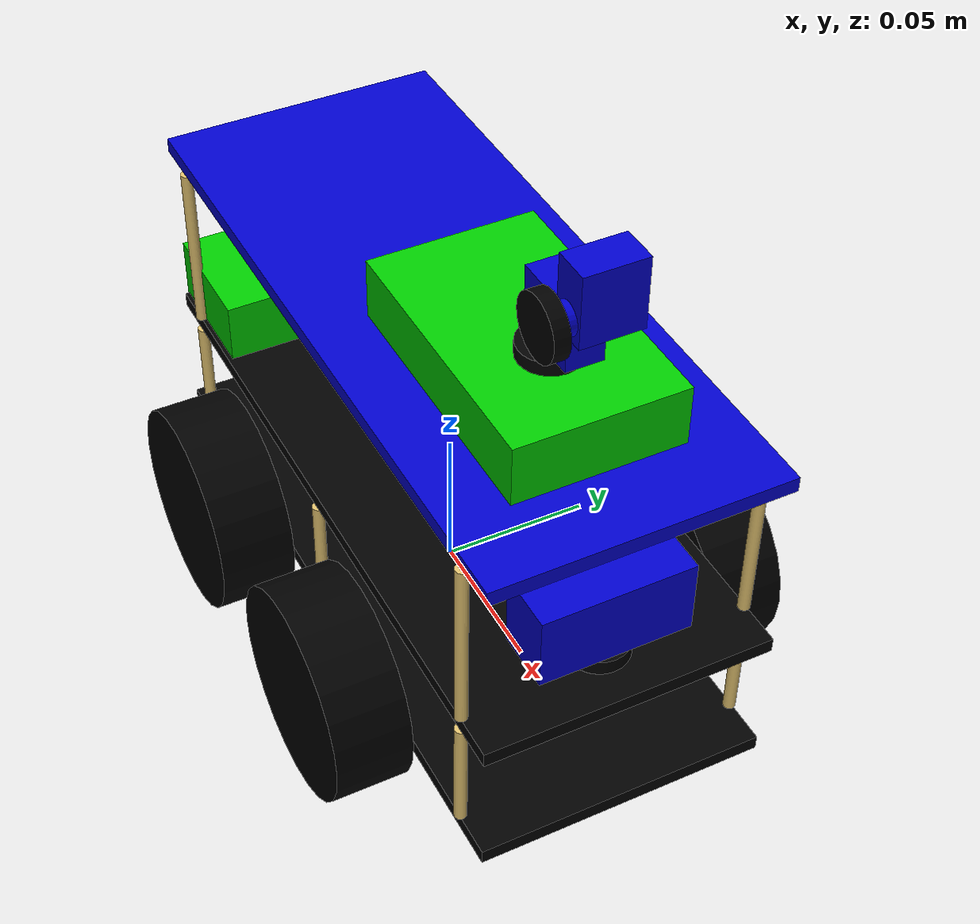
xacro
<?xml version="1.0"?>
<robot xmlns:xacro="http://www.ros.org/wiki/xacro" name="pigoo">

<xacro:property name="wheelRadius" value="0.035" />
<xacro:property name="wheelWidth" value="0.025" />
<xacro:property name="midPlateOffset" value="0.045" />
<xacro:property name="topPlateOffset" value="0.065" />
<xacro:property name="plateHeight" value="0.005" />
<xacro:property name="plateWidth" value="0.095" />
<xacro:property name="plateLength" value="0.23" />

  <!--
  ********************************
  * XACRO MACROS
  ********************************
  -->

<xacro:macro name="box_inertia" params="m h d w">
    <inertia  ixx="${(m*(h*h+d*d))/12}" ixy = "0" ixz = "0"
              iyy="${(m*(w*w+d*d))/12}" iyz = "0"
              izz="${(m*(w*w+h*h))/12}"
     />
</xacro:macro>

<xacro:macro name="cylinder_inertia" params="m r h">
    <inertia  ixx="${(m*(3*r*r+h*h))/12}" ixy = "0" ixz = "0"
              iyy="${(m*(3*r*r+h*h))/12}" iyz = "0"
              izz="${(m*r*r)/2}"
    />
</xacro:macro>

<xacro:macro name="wheel" params="prefix reflect front">
  <link name="${prefix}_wheel">
    <visual>
      <geometry>
        <cylinder length="${wheelWidth}" radius="${wheelRadius}"/>
      </geometry>
      <material name="black">
        <color rgba="0 0 0 1"/>
      </material>
    </visual>
    <collision>
      <geometry>
        <cylinder length="${wheelWidth}" radius="${wheelRadius}"/>
      </geometry>
    </collision>
    <inertial>
      <mass value="0.02"/>
      <xacro:cylinder_inertia m="0.02" r="${wheelRadius}" h="${wheelWidth}"/>
    </inertial>
  </link>

  <joint name="${prefix}_wheel_joint" type="continuous">
    <axis xyz="0 0 1"/>
    <parent link="base_plate"/>
    <child link="${prefix}_wheel"/>
    <origin rpy="-${pi/2} 0 0" xyz="${front*0.045} ${reflect*(plateWidth/2 + wheelWidth/2+0.005)} 0.015"/>
    <limit effort="100" velocity="100"/>
    <dynamics damping="0.0" friction="0.0"/>
  </joint>

  <transmission name="${prefix}_wheel_trans">
    <type>transmission_interface/SimpleTransmission</type>
    <actuator name="${prefix}_wheel_motor">
      <mechanicalReduction>1</mechanicalReduction>
    </actuator>
    <joint name="${prefix}_wheel_joint">
      <hardwareInterface>hardware_interface/VelocityJointInterface</hardwareInterface>
    </joint>
  </transmission>

  <gazebo reference="${prefix}_wheel">
      <mu1 value="200.0"/>
      <mu2 value="100.0"/>
      <kp value="10000000.0" />
      <kd value="1.0" />
      <material>Gazebo/Grey</material>
  </gazebo>

</xacro:macro>

<xacro:macro name="pillar" params="prefix length parent reflect front">
  <link name="${prefix}_pillar">
    <visual>
      <geometry>
        <cylinder length="${length}" radius="0.002"/>
      </geometry>
      <material name="brass">
        <color rgba="0.88 0.7568 0.43 1"/>
      </material>
    </visual>
    <collision>
      <geometry>
        <cylinder length="${length}" radius="0.002"/>
      </geometry>
    </collision>
    <inertial>
      <mass value="0.005"/>
      <xacro:cylinder_inertia m="0.005" r="0.002" h="${length}"/>
    </inertial>
  </link>

  <joint name="${prefix}_pillar" type="fixed">
    <parent link="${parent}"/>
    <child link="${prefix}_pillar"/>
    <origin xyz="${front*0.10} ${reflect*0.047} ${length/2+0.0025}"/>
  </joint>
</xacro:macro>

  <!--
  ********************************
  * link definitions
  ********************************
  -->

  <link name="base_link">
    <origin xyz="0 0 0.015" />
  </link>

  <link name="base_plate">
    <visual>
      <geometry>
        <box size="${plateLength} ${plateWidth} ${plateHeight}" />
      </geometry>
      <material name="black">
        <color rgba="0 0 0 1"/>
      </material>
    </visual>
    <collision>
      <geometry>
        <box size="${plateLength} ${plateWidth} ${plateHeight}" />
      </geometry>
    </collision>
    <inertial>
      <mass value="0.08"/>
      <xacro:box_inertia m="0.08" h="${plateHeight}" d="${plateWidth}" w="${plateLength}" />
    </inertial>
  </link>

  <link name="mid_plate">
    <visual>
      <geometry>
        <box size="${plateLength} ${plateWidth} ${plateHeight}" />
      </geometry>
      <material name="black">
        <color rgba="0 0 0 1"/>
      </material>
    </visual>
    <collision>
      <geometry>
        <box size="${plateLength} ${plateWidth} ${plateHeight}" />
      </geometry>
    </collision>
    <inertial>
      <mass value="0.02"/>
      <xacro:box_inertia m="0.02" h="${plateHeight}" d="${plateWidth}" w="${plateLength}" />
    </inertial>
  </link>

  <link name="top_plate">
    <visual>
      <geometry>
        <box size="${plateLength} ${plateWidth} ${plateHeight}"/>
      </geometry>
      <material name="blue">
        <color rgba="0 0 .8 1"/>
      </material>
    </visual>
    <collision>
      <geometry>
        <box size="${plateLength} ${plateWidth} ${plateHeight}"/>
      </geometry>
    </collision>
    <inertial>
      <mass value="0.02"/>
      <xacro:box_inertia m="0.02" h="${plateHeight}" d="${plateWidth}" w="${plateLength}" />
    </inertial>
  </link>

  <link name="batteryBox">
	  <visual>
      <geometry>
        <box size="0.042 0.092 0.023" />
      </geometry>
      <material name="green">
        <color rgba="0 0.8 0 1"/>
      </material>
    </visual>
    <collision>
      <geometry>
        <box size="0.042 0.092 0.023" />
      </geometry>
    </collision>
    <inertial>
      <mass value="0.07"/>
      <xacro:box_inertia m="0.07" h="0.023" d="0.042" w="0.092" />
    </inertial>
  </link>

  <xacro:wheel prefix="right_front" reflect="-1" front="1" />
  <xacro:wheel prefix="left_front" reflect="1" front="1" />
  <xacro:wheel prefix="right_back" reflect="-1" front="-1" />
  <xacro:wheel prefix="left_back" reflect="1" front="-1" />

  <xacro:pillar prefix="base_right_front" length="${midPlateOffset - plateHeight}" parent="base_plate" reflect="-1" front="1" />
  <xacro:pillar prefix="base_left_front" length="${midPlateOffset -plateHeight}" parent="base_plate" reflect="1" front="1" />
  <xacro:pillar prefix="base_right_mid" length="${midPlateOffset - plateHeight}" parent="base_plate" reflect="-1" front="0" />
  <xacro:pillar prefix="base_left_mid" length="${midPlateOffset - plateHeight}" parent="base_plate" reflect="1" front="0" />
  <xacro:pillar prefix="base_right_back" length="${midPlateOffset - plateHeight}" parent="base_plate" reflect="-1" front="-1" />
  <xacro:pillar prefix="base_left_back" length="${midPlateOffset - plateHeight}" parent="base_plate" reflect="1" front="-1" />

  <xacro:pillar prefix="mid_right_front" length="${topPlateOffset- plateHeight}" parent="mid_plate" reflect="-1" front="1" />
  <xacro:pillar prefix="mid_left_front" length="${topPlateOffset - plateHeight}" parent="mid_plate" reflect="1" front="1" />
  <xacro:pillar prefix="mid_right_back" length="${topPlateOffset - plateHeight}" parent="mid_plate" reflect="-1" front="-1" />
  <xacro:pillar prefix="mid_left_fback" length="${topPlateOffset - plateHeight}" parent="mid_plate" reflect="1" front="-1" />

  <link name="raspberry_pi">
	  <visual>
      <geometry>
        <box size="0.09 0.055 0.02" />
      </geometry>
      <material name="green">
        <color rgba="0 0.8 0 1"/>
      </material>
    </visual>
    <collision>
      <geometry>
        <box size="0.09 0.055 0.02" />
      </geometry>
    </collision>
    <inertial>
      <mass value="0.02"/>
      <xacro:box_inertia m="0.02" h="0.02" d="0.055" w="0.09" />
    </inertial>
  </link>

  <link name="cam_pan_bottom_link">
		<visual>
			<geometry>
				<cylinder length="0.005" radius="0.01"/>
			</geometry>
	    <material name="black"/>
	  </visual>
    <collision>
			<geometry>
				<cylinder length="0.005" radius="0.01"/>
			</geometry>
	  </collision>
    <inertial>
      <mass value="0.005"/>
      <xacro:cylinder_inertia m="0.005" r="0.01" h="0.005"/>
    </inertial>
	</link>

  <link name="cam_pan_top_link">
		<visual>
			<geometry>
				<cylinder length="0.005" radius="0.005"/>
			</geometry>
	    <material name="blue"/>
	  </visual>
    <collision>
			<geometry>
				<cylinder length="0.005" radius="0.005"/>
			</geometry>
	  </collision>
    <inertial>
      <mass value="0.005"/>
      <xacro:cylinder_inertia m="0.005" r="0.005" h="0.005"/>
    </inertial>
	</link>

  <link name="cam_pan_servo">
    <visual>
      <geometry>
        <box size="0.023 0.012 0.02" />
      </geometry>
      <material name="blue" />
    </visual>
    <collision>
      <geometry>
        <box size="0.023 0.012 0.02" />
      </geometry>
    </collision>
    <inertial>
      <mass value="0.02"/>
      <xacro:box_inertia m="0.02" h="0.02" d="0.012" w="0.023" />
    </inertial>
  </link>

 <link name="cam_tilt_bottom_link">
		<visual>
			<geometry>
				<cylinder length="0.005" radius="0.01"/>
			</geometry>
	    <material name="black"/>
	  </visual>
    <collision>
			<geometry>
				<cylinder length="0.005" radius="0.01"/>
			</geometry>
	  </collision>
    <inertial>
      <mass value="0.005"/>
      <xacro:cylinder_inertia m="0.005" r="0.01" h="0.005"/>
    </inertial>
	</link>

  <link name="cam_tilt_top_link">
		<visual>
			<geometry>
				<cylinder length="0.005" radius="0.005"/>
			</geometry>
	    <material name="blue"/>
	  </visual>
    <collision>
			<geometry>
				<cylinder length="0.005" radius="0.005"/>
			</geometry>
	  </collision>
    <inertial>
      <mass value="0.005"/>
      <xacro:cylinder_inertia m="0.005" r="0.005" h="0.005"/>
    </inertial>
	</link>

  <link name="cam_tilt_servo">
    <visual>
      <geometry>
        <box size="0.023 0.012 0.02" />
      </geometry>
      <material name="blue" />
    </visual>
    <collision>
      <geometry>
        <box size="0.023 0.012 0.02" />
      </geometry>
    </collision>
    <inertial>
      <mass value="0.005"/>
      <xacro:box_inertia m="0.005" h="0.02" d="0.012" w="0.023" />
    </inertial>
  </link>

  <link name="us_pan_bottom_link">
		<visual>
			<geometry>
				<cylinder length="0.005" radius="0.01"/>
			</geometry>
	    <material name="black"/>
	  </visual>
    <collision>
			<geometry>
				<cylinder length="0.005" radius="0.01"/>
			</geometry>
	  </collision>
    <inertial>
      <mass value="0.005"/>
      <xacro:cylinder_inertia m="0.005" r="0.01" h="0.005"/>
    </inertial>
	</link>

  <link name="us_pan_top_link">
		<visual>
			<geometry>
				<cylinder length="0.005" radius="0.005"/>
			</geometry>
	    <material name="blue"/>
	  </visual>
    <collision>
			<geometry>
				<cylinder length="0.005" radius="0.005"/>
			</geometry>
	  </collision>
    <inertial>
      <mass value="0.005"/>
      <xacro:cylinder_inertia m="0.005" r="0.005" h="0.005"/>
    </inertial>
	</link>

  <link name="ultrasonic">
    <visual>
      <geometry>
        <box size="0.05 0.02 0.025"/>
      </geometry>
      <material name="blue" />
    </visual>
    <collision>
      <geometry>
        <box size="0.05 0.02 0.025"/>
      </geometry>
    </collision>
    <inertial>
      <mass value="0.02"/>
      <xacro:box_inertia m="0.02" h="0.025" d="0.02" w="0.05" />
    </inertial>
  </link>

<!--
  ********************************
  * Fixed robot model joints
  ********************************
-->
  <joint name="base_plate" type="fixed">
    <parent link="base_link"/>
    <child link="base_plate"/>
  </joint>

  <joint name="base_to_mid" type="fixed">
    <parent link="base_plate"/>
    <child link="mid_plate"/>
    <origin xyz="0 0 ${midPlateOffset}"/>
  </joint>
  <joint name="base_to_battery" type="fixed">
    <parent link="mid_plate"/>
    <child link="batteryBox"/>
    <origin xyz="-0.095 0 0.012"/>
  </joint>
  <joint name="mid_to_top" type="fixed">
    <parent link="mid_plate"/>
    <child link="top_plate"/>
    <origin xyz="0 0 ${topPlateOffset}"/>
  </joint>
  <joint name="top_to_pi" type="fixed">
    <parent link="top_plate"/>
    <child link="raspberry_pi"/>
    <origin xyz="0.045 0 0.013"/>
  </joint>
  <joint name="pi_to_pan" type="fixed">
    <parent link="raspberry_pi"/>
    <child link="cam_pan_bottom_link"/>
    <origin xyz="0.015 0 0.012"/>
  </joint>

  <joint name="pan_to_servo" type="fixed">
    <parent link="cam_pan_top_link"/>
    <child link="cam_pan_servo"/>
    <origin xyz="0.007 0 0.012"/>
  </joint>

  <joint name="pan_servo_to_tilt" type="fixed">
    <parent link="cam_pan_servo"/>
    <child link="cam_tilt_bottom_link"/>
    <origin rpy="-${pi/2} 0 0" xyz="0.015 -0.015 0.012"/>
  </joint>

  <joint name="tilt_to_servo" type="fixed">
    <parent link="cam_tilt_top_link"/>
    <child link="cam_tilt_servo"/>
    <origin rpy="0 0 ${pi/2}" xyz="0.00 -0.005 0.012"/>
  </joint>

  <joint name="mid_to_us_pan" type="fixed">
    <parent link="mid_plate"/>
    <child link="us_pan_bottom_link"/>
    <origin xyz="0.095 0 0.005"/>
  </joint>

  <joint name="us_pan_to_servo" type="fixed">
    <parent link="us_pan_top_link"/>
    <child link="ultrasonic"/>
    <origin rpy="0 0 ${pi/2}" xyz="0.00 0 0.012"/>
  </joint>

  <!--
  ********************************
  * Servo joints
  ********************************
  -->

    <joint name="cam_pan_joint" type="revolute">
    	<parent link="cam_pan_bottom_link"/>
    	<child link="cam_pan_top_link"/>
    	<origin xyz="0 0 0.005" rpy="0 0 0"/>
    	<axis xyz="0 0 1"/>
    	<limit lower="-${pi/2}" upper="${pi/2}" effort="30" velocity="3"/>
  	</joint>

	<joint name="cam_tilt_joint" type="revolute">
    	<parent link="cam_tilt_bottom_link"/>
    	<child link="cam_tilt_top_link"/>
    	<origin xyz="0 0 0.005" rpy="0 0 0"/>
    	<axis xyz="0 0 1"/>
    	<limit lower="-${pi/2}" upper="${pi/2}" effort="30" velocity="3"/>
	</joint>

    <joint name="us_pan_joint" type="revolute">
    	<parent link="us_pan_bottom_link"/>
    	<child link="us_pan_top_link"/>
    	<origin xyz="0 0 0.005" rpy="0 0 0"/>
    	<axis xyz="0 0 1"/>
    	<limit lower="-${pi/2}" upper="${pi/2}" effort="10" velocity="3"/>
  	</joint>

  <!--
    ********************************
    * Gazebo elements
    ********************************
    -->

  <gazebo>
    <plugin name="gazebo_ros_control" filename="libgazebo_ros_control.so">
      <robotNamespace>/</robotNamespace>
    </plugin>
  </gazebo>

  <transmission name="cam_pan_trans" type="SimpleTransmission">
    <type>transmission_interface/SimpleTransmission</type>
    <actuator name="cam_pan_motor">
      <mechanicalReduction>1</mechanicalReduction>
    </actuator>
    <joint name="cam_pan_joint">
      <hardwareInterface>hardware_interface/PositionJointInterface</hardwareInterface>
    </joint>
  </transmission>

  <transmission name="cam_tilt_trans" type="SimpleTransmission">
    <type>transmission_interface/SimpleTransmission</type>
    <actuator name="cam_tilt_motor">
      <mechanicalReduction>1</mechanicalReduction>
    </actuator>
    <joint name="cam_tilt_joint">
      <hardwareInterface>hardware_interface/PositionJointInterface</hardwareInterface>
    </joint>
  </transmission>

  <transmission name="us_pan_trans">
    <type>transmission_interface/SimpleTransmission</type>
    <actuator name="us_pan_motor">
      <mechanicalReduction>1</mechanicalReduction>
    </actuator>
    <joint name="us_pan_joint">
      <hardwareInterface>hardware_interface/PositionJointInterface</hardwareInterface>
    </joint>
  </transmission>

</robot>
